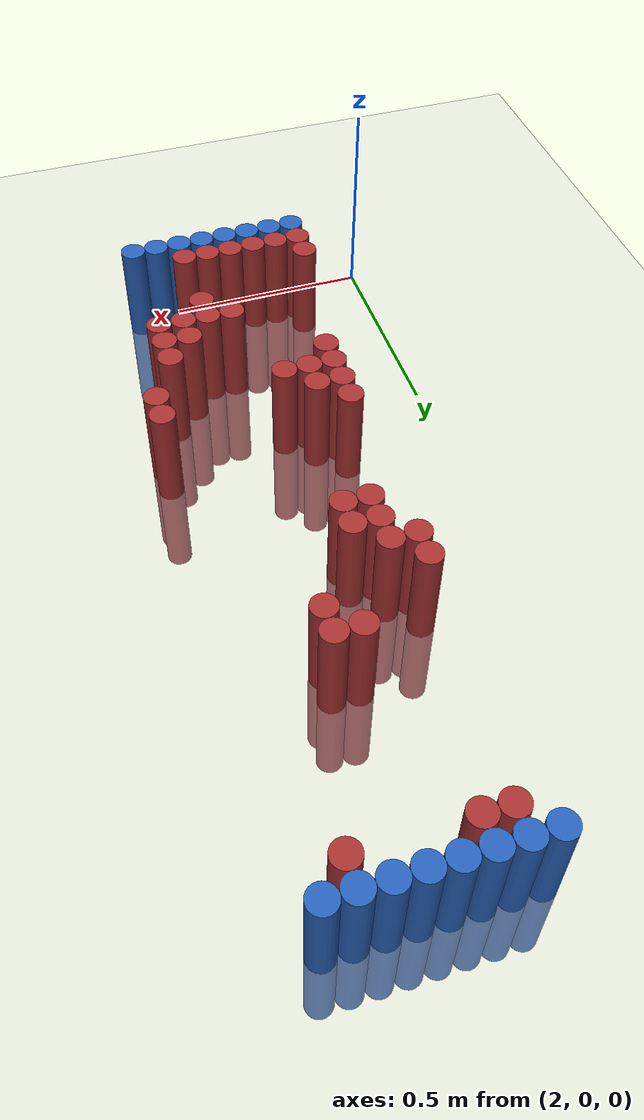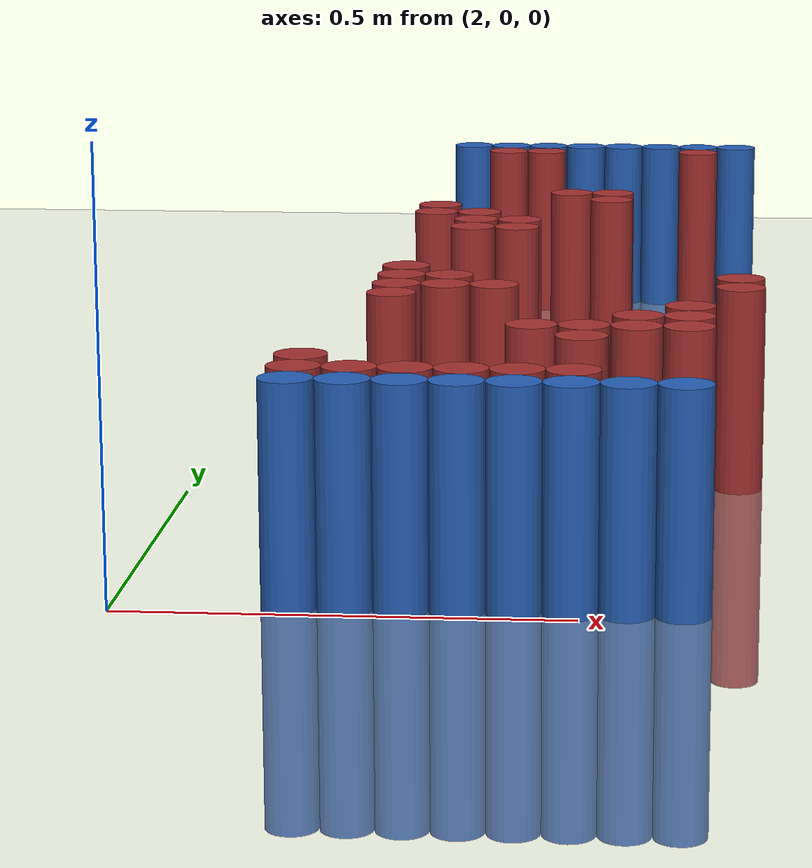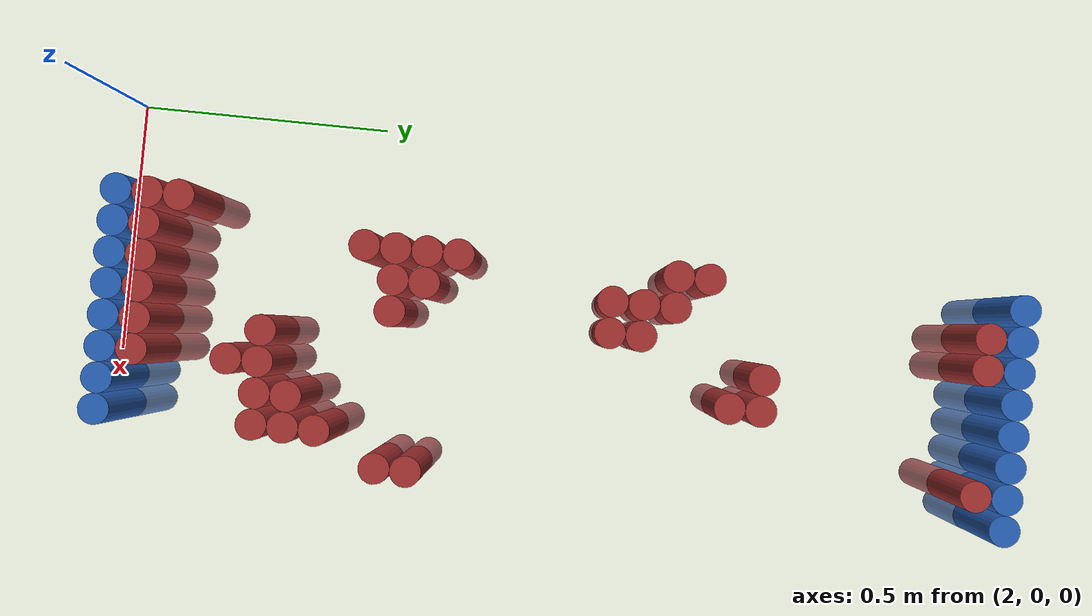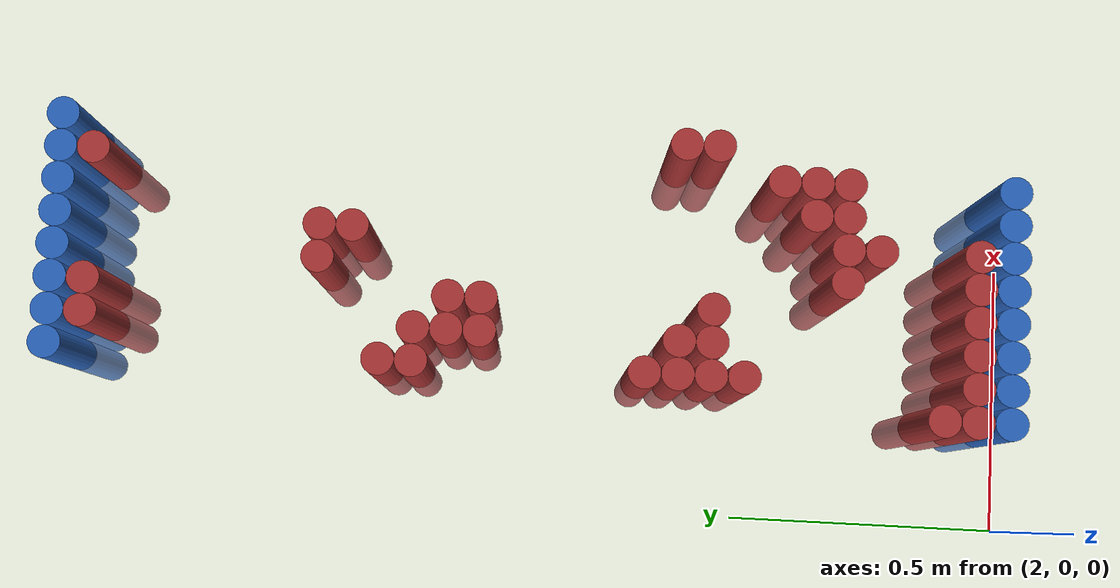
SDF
<sdf version="1.6">
 <world name="default">
  <model name="ground_plane">
   <static>1</static>
   <link name="link">
    <collision name="collision">
     <geometry><plane><normal>0 0 1</normal><size>100 100</size></plane></geometry>
     <surface><friction><ode><mu>100</mu><mu2>50</mu2></ode></friction></surface>
    </collision>
    <visual name="visual">
     <cast_shadows>0</cast_shadows>
     <geometry><plane><normal>0 0 1</normal><size>100 100</size></plane></geometry>
     <material>
      <script><uri>file://media/materials/scripts/gazebo.material</uri><name>Gazebo/Grey</name></script>
     </material>
    </visual>
   </link>
  </model>
  <model name="unit_cylinder_98">
   <static>1</static>
   <pose>2.250000 1.770000 0.000000 0.000000 0.000000 0.000000</pose>
   <link name="link">
    <inertial>
     <mass>1</mass>
     <inertia><ixx>0.145833</ixx><ixy>0</ixy><ixz>0</ixz><iyy>0.145833</iyy><iyz>0</iyz><izz>0.125</izz></inertia>
    </inertial>
    <collision name="collision">
     <geometry><cylinder><radius>0.030000</radius><length>0.5</length></cylinder></geometry>
    </collision>
    <visual name="visual">
     <geometry><cylinder><radius>0.030000</radius><length>0.5</length></cylinder></geometry>
     <material>
      <ambient>0.152000 0.379000 0.720000 1</ambient>
      <diffuse>0.152000 0.379000 0.720000 1</diffuse>
     </material>
     <material>
      <script><name>Gazebo/Grey</name><uri>file://media/materials/scripts/gazebo.material</uri></script>
     </material>
    </visual>
   </link>
  </model>
  <model name="unit_cylinder_99">
   <static>1</static>
   <pose>2.310000 1.770000 0.000000 0.000000 0.000000 0.000000</pose>
   <link name="link">
    <inertial>
     <mass>1</mass>
     <inertia><ixx>0.145833</ixx><ixy>0</ixy><ixz>0</ixz><iyy>0.145833</iyy><iyz>0</iyz><izz>0.125</izz></inertia>
    </inertial>
    <collision name="collision">
     <geometry><cylinder><radius>0.030000</radius><length>0.5</length></cylinder></geometry>
    </collision>
    <visual name="visual">
     <geometry><cylinder><radius>0.030000</radius><length>0.5</length></cylinder></geometry>
     <material>
      <ambient>0.152000 0.379000 0.720000 1</ambient>
      <diffuse>0.152000 0.379000 0.720000 1</diffuse>
     </material>
     <material>
      <script><name>Gazebo/Grey</name><uri>file://media/materials/scripts/gazebo.material</uri></script>
     </material>
    </visual>
   </link>
  </model>
  <model name="unit_cylinder_100">
   <static>1</static>
   <pose>2.370000 1.770000 0.000000 0.000000 0.000000 0.000000</pose>
   <link name="link">
    <inertial>
     <mass>1</mass>
     <inertia><ixx>0.145833</ixx><ixy>0</ixy><ixz>0</ixz><iyy>0.145833</iyy><iyz>0</iyz><izz>0.125</izz></inertia>
    </inertial>
    <collision name="collision">
     <geometry><cylinder><radius>0.030000</radius><length>0.5</length></cylinder></geometry>
    </collision>
    <visual name="visual">
     <geometry><cylinder><radius>0.030000</radius><length>0.5</length></cylinder></geometry>
     <material>
      <ambient>0.152000 0.379000 0.720000 1</ambient>
      <diffuse>0.152000 0.379000 0.720000 1</diffuse>
     </material>
     <material>
      <script><name>Gazebo/Grey</name><uri>file://media/materials/scripts/gazebo.material</uri></script>
     </material>
    </visual>
   </link>
  </model>
  <model name="unit_cylinder_101">
   <static>1</static>
   <pose>2.430000 1.770000 0.000000 0.000000 0.000000 0.000000</pose>
   <link name="link">
    <inertial>
     <mass>1</mass>
     <inertia><ixx>0.145833</ixx><ixy>0</ixy><ixz>0</ixz><iyy>0.145833</iyy><iyz>0</iyz><izz>0.125</izz></inertia>
    </inertial>
    <collision name="collision">
     <geometry><cylinder><radius>0.030000</radius><length>0.5</length></cylinder></geometry>
    </collision>
    <visual name="visual">
     <geometry><cylinder><radius>0.030000</radius><length>0.5</length></cylinder></geometry>
     <material>
      <ambient>0.152000 0.379000 0.720000 1</ambient>
      <diffuse>0.152000 0.379000 0.720000 1</diffuse>
     </material>
     <material>
      <script><name>Gazebo/Grey</name><uri>file://media/materials/scripts/gazebo.material</uri></script>
     </material>
    </visual>
   </link>
  </model>
  <model name="unit_cylinder_102">
   <static>1</static>
   <pose>2.490000 1.770000 0.000000 0.000000 0.000000 0.000000</pose>
   <link name="link">
    <inertial>
     <mass>1</mass>
     <inertia><ixx>0.145833</ixx><ixy>0</ixy><ixz>0</ixz><iyy>0.145833</iyy><iyz>0</iyz><izz>0.125</izz></inertia>
    </inertial>
    <collision name="collision">
     <geometry><cylinder><radius>0.030000</radius><length>0.5</length></cylinder></geometry>
    </collision>
    <visual name="visual">
     <geometry><cylinder><radius>0.030000</radius><length>0.5</length></cylinder></geometry>
     <material>
      <ambient>0.152000 0.379000 0.720000 1</ambient>
      <diffuse>0.152000 0.379000 0.720000 1</diffuse>
     </material>
     <material>
      <script><name>Gazebo/Grey</name><uri>file://media/materials/scripts/gazebo.material</uri></script>
     </material>
    </visual>
   </link>
  </model>
  <model name="unit_cylinder_103">
   <static>1</static>
   <pose>2.550000 1.770000 0.000000 0.000000 0.000000 0.000000</pose>
   <link name="link">
    <inertial>
     <mass>1</mass>
     <inertia><ixx>0.145833</ixx><ixy>0</ixy><ixz>0</ixz><iyy>0.145833</iyy><iyz>0</iyz><izz>0.125</izz></inertia>
    </inertial>
    <collision name="collision">
     <geometry><cylinder><radius>0.030000</radius><length>0.5</length></cylinder></geometry>
    </collision>
    <visual name="visual">
     <geometry><cylinder><radius>0.030000</radius><length>0.5</length></cylinder></geometry>
     <material>
      <ambient>0.152000 0.379000 0.720000 1</ambient>
      <diffuse>0.152000 0.379000 0.720000 1</diffuse>
     </material>
     <material>
      <script><name>Gazebo/Grey</name><uri>file://media/materials/scripts/gazebo.material</uri></script>
     </material>
    </visual>
   </link>
  </model>
  <model name="unit_cylinder_104">
   <static>1</static>
   <pose>2.610000 1.770000 0.000000 0.000000 0.000000 0.000000</pose>
   <link name="link">
    <inertial>
     <mass>1</mass>
     <inertia><ixx>0.145833</ixx><ixy>0</ixy><ixz>0</ixz><iyy>0.145833</iyy><iyz>0</iyz><izz>0.125</izz></inertia>
    </inertial>
    <collision name="collision">
     <geometry><cylinder><radius>0.030000</radius><length>0.5</length></cylinder></geometry>
    </collision>
    <visual name="visual">
     <geometry><cylinder><radius>0.030000</radius><length>0.5</length></cylinder></geometry>
     <material>
      <ambient>0.152000 0.379000 0.720000 1</ambient>
      <diffuse>0.152000 0.379000 0.720000 1</diffuse>
     </material>
     <material>
      <script><name>Gazebo/Grey</name><uri>file://media/materials/scripts/gazebo.material</uri></script>
     </material>
    </visual>
   </link>
  </model>
  <model name="unit_cylinder_105">
   <static>1</static>
   <pose>2.670000 1.770000 0.000000 0.000000 0.000000 0.000000</pose>
   <link name="link">
    <inertial>
     <mass>1</mass>
     <inertia><ixx>0.145833</ixx><ixy>0</ixy><ixz>0</ixz><iyy>0.145833</iyy><iyz>0</iyz><izz>0.125</izz></inertia>
    </inertial>
    <collision name="collision">
     <geometry><cylinder><radius>0.030000</radius><length>0.5</length></cylinder></geometry>
    </collision>
    <visual name="visual">
     <geometry><cylinder><radius>0.030000</radius><length>0.5</length></cylinder></geometry>
     <material>
      <ambient>0.152000 0.379000 0.720000 1</ambient>
      <diffuse>0.152000 0.379000 0.720000 1</diffuse>
     </material>
     <material>
      <script><name>Gazebo/Grey</name><uri>file://media/materials/scripts/gazebo.material</uri></script>
     </material>
    </visual>
   </link>
  </model>
  <model name="unit_cylinder_125">
   <static>1</static>
   <pose>2.310000 1.710000 0.000000 0.000000 0.000000 0.000000</pose>
   <link name="link">
    <inertial>
     <mass>1</mass>
     <inertia><ixx>0.145833</ixx><ixy>0</ixy><ixz>0</ixz><iyy>0.145833</iyy><iyz>0</iyz><izz>0.125</izz></inertia>
    </inertial>
    <collision name="collision">
     <geometry><cylinder><radius>0.030000</radius><length>0.5</length></cylinder></geometry>
    </collision>
    <visual name="visual">
     <geometry><cylinder><radius>0.030000</radius><length>0.5</length></cylinder></geometry>
     <material>
      <ambient>0.648000 0.192000 0.192000 1</ambient>
      <diffuse>0.648000 0.192000 0.192000 1</diffuse>
     </material>
     <material>
      <script><name>Gazebo/Grey</name><uri>file://media/materials/scripts/gazebo.material</uri></script>
     </material>
    </visual>
   </link>
  </model>
  <model name="unit_cylinder_126">
   <static>1</static>
   <pose>2.370000 1.710000 0.000000 0.000000 0.000000 0.000000</pose>
   <link name="link">
    <inertial>
     <mass>1</mass>
     <inertia><ixx>0.145833</ixx><ixy>0</ixy><ixz>0</ixz><iyy>0.145833</iyy><iyz>0</iyz><izz>0.125</izz></inertia>
    </inertial>
    <collision name="collision">
     <geometry><cylinder><radius>0.030000</radius><length>0.5</length></cylinder></geometry>
    </collision>
    <visual name="visual">
     <geometry><cylinder><radius>0.030000</radius><length>0.5</length></cylinder></geometry>
     <material>
      <ambient>0.648000 0.192000 0.192000 1</ambient>
      <diffuse>0.648000 0.192000 0.192000 1</diffuse>
     </material>
     <material>
      <script><name>Gazebo/Grey</name><uri>file://media/materials/scripts/gazebo.material</uri></script>
     </material>
    </visual>
   </link>
  </model>
  <model name="unit_cylinder_127">
   <static>1</static>
   <pose>2.610000 1.710000 0.000000 0.000000 0.000000 0.000000</pose>
   <link name="link">
    <inertial>
     <mass>1</mass>
     <inertia><ixx>0.145833</ixx><ixy>0</ixy><ixz>0</ixz><iyy>0.145833</iyy><iyz>0</iyz><izz>0.125</izz></inertia>
    </inertial>
    <collision name="collision">
     <geometry><cylinder><radius>0.030000</radius><length>0.5</length></cylinder></geometry>
    </collision>
    <visual name="visual">
     <geometry><cylinder><radius>0.030000</radius><length>0.5</length></cylinder></geometry>
     <material>
      <ambient>0.648000 0.192000 0.192000 1</ambient>
      <diffuse>0.648000 0.192000 0.192000 1</diffuse>
     </material>
     <material>
      <script><name>Gazebo/Grey</name><uri>file://media/materials/scripts/gazebo.material</uri></script>
     </material>
    </visual>
   </link>
  </model>
  <model name="unit_cylinder_144">
   <static>1</static>
   <pose>2.430000 1.290000 0.000000 0.000000 0.000000 0.000000</pose>
   <link name="link">
    <inertial>
     <mass>1</mass>
     <inertia><ixx>0.145833</ixx><ixy>0</ixy><ixz>0</ixz><iyy>0.145833</iyy><iyz>0</iyz><izz>0.125</izz></inertia>
    </inertial>
    <collision name="collision">
     <geometry><cylinder><radius>0.030000</radius><length>0.5</length></cylinder></geometry>
    </collision>
    <visual name="visual">
     <geometry><cylinder><radius>0.030000</radius><length>0.5</length></cylinder></geometry>
     <material>
      <ambient>0.648000 0.192000 0.192000 1</ambient>
      <diffuse>0.648000 0.192000 0.192000 1</diffuse>
     </material>
     <material>
      <script><name>Gazebo/Grey</name><uri>file://media/materials/scripts/gazebo.material</uri></script>
     </material>
    </visual>
   </link>
  </model>
  <model name="unit_cylinder_145">
   <static>1</static>
   <pose>2.490000 1.290000 0.000000 0.000000 0.000000 0.000000</pose>
   <link name="link">
    <inertial>
     <mass>1</mass>
     <inertia><ixx>0.145833</ixx><ixy>0</ixy><ixz>0</ixz><iyy>0.145833</iyy><iyz>0</iyz><izz>0.125</izz></inertia>
    </inertial>
    <collision name="collision">
     <geometry><cylinder><radius>0.030000</radius><length>0.5</length></cylinder></geometry>
    </collision>
    <visual name="visual">
     <geometry><cylinder><radius>0.030000</radius><length>0.5</length></cylinder></geometry>
     <material>
      <ambient>0.648000 0.192000 0.192000 1</ambient>
      <diffuse>0.648000 0.192000 0.192000 1</diffuse>
     </material>
     <material>
      <script><name>Gazebo/Grey</name><uri>file://media/materials/scripts/gazebo.material</uri></script>
     </material>
    </visual>
   </link>
  </model>
  <model name="unit_cylinder_149">
   <static>1</static>
   <pose>2.490000 1.230000 0.000000 0.000000 0.000000 0.000000</pose>
   <link name="link">
    <inertial>
     <mass>1</mass>
     <inertia><ixx>0.145833</ixx><ixy>0</ixy><ixz>0</ixz><iyy>0.145833</iyy><iyz>0</iyz><izz>0.125</izz></inertia>
    </inertial>
    <collision name="collision">
     <geometry><cylinder><radius>0.030000</radius><length>0.5</length></cylinder></geometry>
    </collision>
    <visual name="visual">
     <geometry><cylinder><radius>0.030000</radius><length>0.5</length></cylinder></geometry>
     <material>
      <ambient>0.648000 0.192000 0.192000 1</ambient>
      <diffuse>0.648000 0.192000 0.192000 1</diffuse>
     </material>
     <material>
      <script><name>Gazebo/Grey</name><uri>file://media/materials/scripts/gazebo.material</uri></script>
     </material>
    </visual>
   </link>
  </model>
  <model name="unit_cylinder_153">
   <static>1</static>
   <pose>2.250000 1.170000 0.000000 0.000000 0.000000 0.000000</pose>
   <link name="link">
    <inertial>
     <mass>1</mass>
     <inertia><ixx>0.145833</ixx><ixy>0</ixy><ixz>0</ixz><iyy>0.145833</iyy><iyz>0</iyz><izz>0.125</izz></inertia>
    </inertial>
    <collision name="collision">
     <geometry><cylinder><radius>0.030000</radius><length>0.5</length></cylinder></geometry>
    </collision>
    <visual name="visual">
     <geometry><cylinder><radius>0.030000</radius><length>0.5</length></cylinder></geometry>
     <material>
      <ambient>0.648000 0.192000 0.192000 1</ambient>
      <diffuse>0.648000 0.192000 0.192000 1</diffuse>
     </material>
     <material>
      <script><name>Gazebo/Grey</name><uri>file://media/materials/scripts/gazebo.material</uri></script>
     </material>
    </visual>
   </link>
  </model>
  <model name="unit_cylinder_158">
   <static>1</static>
   <pose>2.250000 1.110000 0.000000 0.000000 0.000000 0.000000</pose>
   <link name="link">
    <inertial>
     <mass>1</mass>
     <inertia><ixx>0.145833</ixx><ixy>0</ixy><ixz>0</ixz><iyy>0.145833</iyy><iyz>0</iyz><izz>0.125</izz></inertia>
    </inertial>
    <collision name="collision">
     <geometry><cylinder><radius>0.030000</radius><length>0.5</length></cylinder></geometry>
    </collision>
    <visual name="visual">
     <geometry><cylinder><radius>0.030000</radius><length>0.5</length></cylinder></geometry>
     <material>
      <ambient>0.648000 0.192000 0.192000 1</ambient>
      <diffuse>0.648000 0.192000 0.192000 1</diffuse>
     </material>
     <material>
      <script><name>Gazebo/Grey</name><uri>file://media/materials/scripts/gazebo.material</uri></script>
     </material>
    </visual>
   </link>
  </model>
  <model name="unit_cylinder_159">
   <static>1</static>
   <pose>2.310000 1.110000 0.000000 0.000000 0.000000 0.000000</pose>
   <link name="link">
    <inertial>
     <mass>1</mass>
     <inertia><ixx>0.145833</ixx><ixy>0</ixy><ixz>0</ixz><iyy>0.145833</iyy><iyz>0</iyz><izz>0.125</izz></inertia>
    </inertial>
    <collision name="collision">
     <geometry><cylinder><radius>0.030000</radius><length>0.5</length></cylinder></geometry>
    </collision>
    <visual name="visual">
     <geometry><cylinder><radius>0.030000</radius><length>0.5</length></cylinder></geometry>
     <material>
      <ambient>0.648000 0.192000 0.192000 1</ambient>
      <diffuse>0.648000 0.192000 0.192000 1</diffuse>
     </material>
     <material>
      <script><name>Gazebo/Grey</name><uri>file://media/materials/scripts/gazebo.material</uri></script>
     </material>
    </visual>
   </link>
  </model>
  <model name="unit_cylinder_165">
   <static>1</static>
   <pose>2.310000 1.050000 0.000000 0.000000 0.000000 0.000000</pose>
   <link name="link">
    <inertial>
     <mass>1</mass>
     <inertia><ixx>0.145833</ixx><ixy>0</ixy><ixz>0</ixz><iyy>0.145833</iyy><iyz>0</iyz><izz>0.125</izz></inertia>
    </inertial>
    <collision name="collision">
     <geometry><cylinder><radius>0.030000</radius><length>0.5</length></cylinder></geometry>
    </collision>
    <visual name="visual">
     <geometry><cylinder><radius>0.030000</radius><length>0.5</length></cylinder></geometry>
     <material>
      <ambient>0.648000 0.192000 0.192000 1</ambient>
      <diffuse>0.648000 0.192000 0.192000 1</diffuse>
     </material>
     <material>
      <script><name>Gazebo/Grey</name><uri>file://media/materials/scripts/gazebo.material</uri></script>
     </material>
    </visual>
   </link>
  </model>
  <model name="unit_cylinder_166">
   <static>1</static>
   <pose>2.370000 1.050000 0.000000 0.000000 0.000000 0.000000</pose>
   <link name="link">
    <inertial>
     <mass>1</mass>
     <inertia><ixx>0.145833</ixx><ixy>0</ixy><ixz>0</ixz><iyy>0.145833</iyy><iyz>0</iyz><izz>0.125</izz></inertia>
    </inertial>
    <collision name="collision">
     <geometry><cylinder><radius>0.030000</radius><length>0.5</length></cylinder></geometry>
    </collision>
    <visual name="visual">
     <geometry><cylinder><radius>0.030000</radius><length>0.5</length></cylinder></geometry>
     <material>
      <ambient>0.648000 0.192000 0.192000 1</ambient>
      <diffuse>0.648000 0.192000 0.192000 1</diffuse>
     </material>
     <material>
      <script><name>Gazebo/Grey</name><uri>file://media/materials/scripts/gazebo.material</uri></script>
     </material>
    </visual>
   </link>
  </model>
  <model name="unit_cylinder_170">
   <static>1</static>
   <pose>2.310000 0.990000 0.000000 0.000000 0.000000 0.000000</pose>
   <link name="link">
    <inertial>
     <mass>1</mass>
     <inertia><ixx>0.145833</ixx><ixy>0</ixy><ixz>0</ixz><iyy>0.145833</iyy><iyz>0</iyz><izz>0.125</izz></inertia>
    </inertial>
    <collision name="collision">
     <geometry><cylinder><radius>0.030000</radius><length>0.5</length></cylinder></geometry>
    </collision>
    <visual name="visual">
     <geometry><cylinder><radius>0.030000</radius><length>0.5</length></cylinder></geometry>
     <material>
      <ambient>0.648000 0.192000 0.192000 1</ambient>
      <diffuse>0.648000 0.192000 0.192000 1</diffuse>
     </material>
     <material>
      <script><name>Gazebo/Grey</name><uri>file://media/materials/scripts/gazebo.material</uri></script>
     </material>
    </visual>
   </link>
  </model>
  <model name="unit_cylinder_171">
   <static>1</static>
   <pose>2.370000 0.990000 0.000000 0.000000 0.000000 0.000000</pose>
   <link name="link">
    <inertial>
     <mass>1</mass>
     <inertia><ixx>0.145833</ixx><ixy>0</ixy><ixz>0</ixz><iyy>0.145833</iyy><iyz>0</iyz><izz>0.125</izz></inertia>
    </inertial>
    <collision name="collision">
     <geometry><cylinder><radius>0.030000</radius><length>0.5</length></cylinder></geometry>
    </collision>
    <visual name="visual">
     <geometry><cylinder><radius>0.030000</radius><length>0.5</length></cylinder></geometry>
     <material>
      <ambient>0.648000 0.192000 0.192000 1</ambient>
      <diffuse>0.648000 0.192000 0.192000 1</diffuse>
     </material>
     <material>
      <script><name>Gazebo/Grey</name><uri>file://media/materials/scripts/gazebo.material</uri></script>
     </material>
    </visual>
   </link>
  </model>
  <model name="unit_cylinder_189">
   <static>1</static>
   <pose>2.250000 0.690000 0.000000 0.000000 0.000000 0.000000</pose>
   <link name="link">
    <inertial>
     <mass>1</mass>
     <inertia><ixx>0.145833</ixx><ixy>0</ixy><ixz>0</ixz><iyy>0.145833</iyy><iyz>0</iyz><izz>0.125</izz></inertia>
    </inertial>
    <collision name="collision">
     <geometry><cylinder><radius>0.030000</radius><length>0.5</length></cylinder></geometry>
    </collision>
    <visual name="visual">
     <geometry><cylinder><radius>0.030000</radius><length>0.5</length></cylinder></geometry>
     <material>
      <ambient>0.648000 0.192000 0.192000 1</ambient>
      <diffuse>0.648000 0.192000 0.192000 1</diffuse>
     </material>
     <material>
      <script><name>Gazebo/Grey</name><uri>file://media/materials/scripts/gazebo.material</uri></script>
     </material>
    </visual>
   </link>
  </model>
  <model name="unit_cylinder_196">
   <static>1</static>
   <pose>2.250000 0.630000 0.000000 0.000000 0.000000 0.000000</pose>
   <link name="link">
    <inertial>
     <mass>1</mass>
     <inertia><ixx>0.145833</ixx><ixy>0</ixy><ixz>0</ixz><iyy>0.145833</iyy><iyz>0</iyz><izz>0.125</izz></inertia>
    </inertial>
    <collision name="collision">
     <geometry><cylinder><radius>0.030000</radius><length>0.5</length></cylinder></geometry>
    </collision>
    <visual name="visual">
     <geometry><cylinder><radius>0.030000</radius><length>0.5</length></cylinder></geometry>
     <material>
      <ambient>0.648000 0.192000 0.192000 1</ambient>
      <diffuse>0.648000 0.192000 0.192000 1</diffuse>
     </material>
     <material>
      <script><name>Gazebo/Grey</name><uri>file://media/materials/scripts/gazebo.material</uri></script>
     </material>
    </visual>
   </link>
  </model>
  <model name="unit_cylinder_197">
   <static>1</static>
   <pose>2.310000 0.630000 0.000000 0.000000 0.000000 0.000000</pose>
   <link name="link">
    <inertial>
     <mass>1</mass>
     <inertia><ixx>0.145833</ixx><ixy>0</ixy><ixz>0</ixz><iyy>0.145833</iyy><iyz>0</iyz><izz>0.125</izz></inertia>
    </inertial>
    <collision name="collision">
     <geometry><cylinder><radius>0.030000</radius><length>0.5</length></cylinder></geometry>
    </collision>
    <visual name="visual">
     <geometry><cylinder><radius>0.030000</radius><length>0.5</length></cylinder></geometry>
     <material>
      <ambient>0.648000 0.192000 0.192000 1</ambient>
      <diffuse>0.648000 0.192000 0.192000 1</diffuse>
     </material>
     <material>
      <script><name>Gazebo/Grey</name><uri>file://media/materials/scripts/gazebo.material</uri></script>
     </material>
    </visual>
   </link>
  </model>
  <model name="unit_cylinder_198">
   <static>1</static>
   <pose>2.670000 0.630000 0.000000 0.000000 0.000000 0.000000</pose>
   <link name="link">
    <inertial>
     <mass>1</mass>
     <inertia><ixx>0.145833</ixx><ixy>0</ixy><ixz>0</ixz><iyy>0.145833</iyy><iyz>0</iyz><izz>0.125</izz></inertia>
    </inertial>
    <collision name="collision">
     <geometry><cylinder><radius>0.030000</radius><length>0.5</length></cylinder></geometry>
    </collision>
    <visual name="visual">
     <geometry><cylinder><radius>0.030000</radius><length>0.5</length></cylinder></geometry>
     <material>
      <ambient>0.648000 0.192000 0.192000 1</ambient>
      <diffuse>0.648000 0.192000 0.192000 1</diffuse>
     </material>
     <material>
      <script><name>Gazebo/Grey</name><uri>file://media/materials/scripts/gazebo.material</uri></script>
     </material>
    </visual>
   </link>
  </model>
  <model name="unit_cylinder_203">
   <static>1</static>
   <pose>2.250000 0.570000 0.000000 0.000000 0.000000 0.000000</pose>
   <link name="link">
    <inertial>
     <mass>1</mass>
     <inertia><ixx>0.145833</ixx><ixy>0</ixy><ixz>0</ixz><iyy>0.145833</iyy><iyz>0</iyz><izz>0.125</izz></inertia>
    </inertial>
    <collision name="collision">
     <geometry><cylinder><radius>0.030000</radius><length>0.5</length></cylinder></geometry>
    </collision>
    <visual name="visual">
     <geometry><cylinder><radius>0.030000</radius><length>0.5</length></cylinder></geometry>
     <material>
      <ambient>0.648000 0.192000 0.192000 1</ambient>
      <diffuse>0.648000 0.192000 0.192000 1</diffuse>
     </material>
     <material>
      <script><name>Gazebo/Grey</name><uri>file://media/materials/scripts/gazebo.material</uri></script>
     </material>
    </visual>
   </link>
  </model>
  <model name="unit_cylinder_204">
   <static>1</static>
   <pose>2.310000 0.570000 0.000000 0.000000 0.000000 0.000000</pose>
   <link name="link">
    <inertial>
     <mass>1</mass>
     <inertia><ixx>0.145833</ixx><ixy>0</ixy><ixz>0</ixz><iyy>0.145833</iyy><iyz>0</iyz><izz>0.125</izz></inertia>
    </inertial>
    <collision name="collision">
     <geometry><cylinder><radius>0.030000</radius><length>0.5</length></cylinder></geometry>
    </collision>
    <visual name="visual">
     <geometry><cylinder><radius>0.030000</radius><length>0.5</length></cylinder></geometry>
     <material>
      <ambient>0.648000 0.192000 0.192000 1</ambient>
      <diffuse>0.648000 0.192000 0.192000 1</diffuse>
     </material>
     <material>
      <script><name>Gazebo/Grey</name><uri>file://media/materials/scripts/gazebo.material</uri></script>
     </material>
    </visual>
   </link>
  </model>
  <model name="unit_cylinder_205">
   <static>1</static>
   <pose>2.370000 0.570000 0.000000 0.000000 0.000000 0.000000</pose>
   <link name="link">
    <inertial>
     <mass>1</mass>
     <inertia><ixx>0.145833</ixx><ixy>0</ixy><ixz>0</ixz><iyy>0.145833</iyy><iyz>0</iyz><izz>0.125</izz></inertia>
    </inertial>
    <collision name="collision">
     <geometry><cylinder><radius>0.030000</radius><length>0.5</length></cylinder></geometry>
    </collision>
    <visual name="visual">
     <geometry><cylinder><radius>0.030000</radius><length>0.5</length></cylinder></geometry>
     <material>
      <ambient>0.648000 0.192000 0.192000 1</ambient>
      <diffuse>0.648000 0.192000 0.192000 1</diffuse>
     </material>
     <material>
      <script><name>Gazebo/Grey</name><uri>file://media/materials/scripts/gazebo.material</uri></script>
     </material>
    </visual>
   </link>
  </model>
  <model name="unit_cylinder_206">
   <static>1</static>
   <pose>2.670000 0.570000 0.000000 0.000000 0.000000 0.000000</pose>
   <link name="link">
    <inertial>
     <mass>1</mass>
     <inertia><ixx>0.145833</ixx><ixy>0</ixy><ixz>0</ixz><iyy>0.145833</iyy><iyz>0</iyz><izz>0.125</izz></inertia>
    </inertial>
    <collision name="collision">
     <geometry><cylinder><radius>0.030000</radius><length>0.5</length></cylinder></geometry>
    </collision>
    <visual name="visual">
     <geometry><cylinder><radius>0.030000</radius><length>0.5</length></cylinder></geometry>
     <material>
      <ambient>0.648000 0.192000 0.192000 1</ambient>
      <diffuse>0.648000 0.192000 0.192000 1</diffuse>
     </material>
     <material>
      <script><name>Gazebo/Grey</name><uri>file://media/materials/scripts/gazebo.material</uri></script>
     </material>
    </visual>
   </link>
  </model>
  <model name="unit_cylinder_209">
   <static>1</static>
   <pose>2.250000 0.510000 0.000000 0.000000 0.000000 0.000000</pose>
   <link name="link">
    <inertial>
     <mass>1</mass>
     <inertia><ixx>0.145833</ixx><ixy>0</ixy><ixz>0</ixz><iyy>0.145833</iyy><iyz>0</iyz><izz>0.125</izz></inertia>
    </inertial>
    <collision name="collision">
     <geometry><cylinder><radius>0.030000</radius><length>0.5</length></cylinder></geometry>
    </collision>
    <visual name="visual">
     <geometry><cylinder><radius>0.030000</radius><length>0.5</length></cylinder></geometry>
     <material>
      <ambient>0.648000 0.192000 0.192000 1</ambient>
      <diffuse>0.648000 0.192000 0.192000 1</diffuse>
     </material>
     <material>
      <script><name>Gazebo/Grey</name><uri>file://media/materials/scripts/gazebo.material</uri></script>
     </material>
    </visual>
   </link>
  </model>
  <model name="unit_cylinder_215">
   <static>1</static>
   <pose>2.610000 0.450000 0.000000 0.000000 0.000000 0.000000</pose>
   <link name="link">
    <inertial>
     <mass>1</mass>
     <inertia><ixx>0.145833</ixx><ixy>0</ixy><ixz>0</ixz><iyy>0.145833</iyy><iyz>0</iyz><izz>0.125</izz></inertia>
    </inertial>
    <collision name="collision">
     <geometry><cylinder><radius>0.030000</radius><length>0.5</length></cylinder></geometry>
    </collision>
    <visual name="visual">
     <geometry><cylinder><radius>0.030000</radius><length>0.5</length></cylinder></geometry>
     <material>
      <ambient>0.648000 0.192000 0.192000 1</ambient>
      <diffuse>0.648000 0.192000 0.192000 1</diffuse>
     </material>
     <material>
      <script><name>Gazebo/Grey</name><uri>file://media/materials/scripts/gazebo.material</uri></script>
     </material>
    </visual>
   </link>
  </model>
  <model name="unit_cylinder_222">
   <static>1</static>
   <pose>2.550000 0.390000 0.000000 0.000000 0.000000 0.000000</pose>
   <link name="link">
    <inertial>
     <mass>1</mass>
     <inertia><ixx>0.145833</ixx><ixy>0</ixy><ixz>0</ixz><iyy>0.145833</iyy><iyz>0</iyz><izz>0.125</izz></inertia>
    </inertial>
    <collision name="collision">
     <geometry><cylinder><radius>0.030000</radius><length>0.5</length></cylinder></geometry>
    </collision>
    <visual name="visual">
     <geometry><cylinder><radius>0.030000</radius><length>0.5</length></cylinder></geometry>
     <material>
      <ambient>0.648000 0.192000 0.192000 1</ambient>
      <diffuse>0.648000 0.192000 0.192000 1</diffuse>
     </material>
     <material>
      <script><name>Gazebo/Grey</name><uri>file://media/materials/scripts/gazebo.material</uri></script>
     </material>
    </visual>
   </link>
  </model>
  <model name="unit_cylinder_223">
   <static>1</static>
   <pose>2.610000 0.390000 0.000000 0.000000 0.000000 0.000000</pose>
   <link name="link">
    <inertial>
     <mass>1</mass>
     <inertia><ixx>0.145833</ixx><ixy>0</ixy><ixz>0</ixz><iyy>0.145833</iyy><iyz>0</iyz><izz>0.125</izz></inertia>
    </inertial>
    <collision name="collision">
     <geometry><cylinder><radius>0.030000</radius><length>0.5</length></cylinder></geometry>
    </collision>
    <visual name="visual">
     <geometry><cylinder><radius>0.030000</radius><length>0.5</length></cylinder></geometry>
     <material>
      <ambient>0.648000 0.192000 0.192000 1</ambient>
      <diffuse>0.648000 0.192000 0.192000 1</diffuse>
     </material>
     <material>
      <script><name>Gazebo/Grey</name><uri>file://media/materials/scripts/gazebo.material</uri></script>
     </material>
    </visual>
   </link>
  </model>
  <model name="unit_cylinder_232">
   <static>1</static>
   <pose>2.430000 0.330000 0.000000 0.000000 0.000000 0.000000</pose>
   <link name="link">
    <inertial>
     <mass>1</mass>
     <inertia><ixx>0.145833</ixx><ixy>0</ixy><ixz>0</ixz><iyy>0.145833</iyy><iyz>0</iyz><izz>0.125</izz></inertia>
    </inertial>
    <collision name="collision">
     <geometry><cylinder><radius>0.030000</radius><length>0.5</length></cylinder></geometry>
    </collision>
    <visual name="visual">
     <geometry><cylinder><radius>0.030000</radius><length>0.5</length></cylinder></geometry>
     <material>
      <ambient>0.648000 0.192000 0.192000 1</ambient>
      <diffuse>0.648000 0.192000 0.192000 1</diffuse>
     </material>
     <material>
      <script><name>Gazebo/Grey</name><uri>file://media/materials/scripts/gazebo.material</uri></script>
     </material>
    </visual>
   </link>
  </model>
  <model name="unit_cylinder_233">
   <static>1</static>
   <pose>2.490000 0.330000 0.000000 0.000000 0.000000 0.000000</pose>
   <link name="link">
    <inertial>
     <mass>1</mass>
     <inertia><ixx>0.145833</ixx><ixy>0</ixy><ixz>0</ixz><iyy>0.145833</iyy><iyz>0</iyz><izz>0.125</izz></inertia>
    </inertial>
    <collision name="collision">
     <geometry><cylinder><radius>0.030000</radius><length>0.5</length></cylinder></geometry>
    </collision>
    <visual name="visual">
     <geometry><cylinder><radius>0.030000</radius><length>0.5</length></cylinder></geometry>
     <material>
      <ambient>0.648000 0.192000 0.192000 1</ambient>
      <diffuse>0.648000 0.192000 0.192000 1</diffuse>
     </material>
     <material>
      <script><name>Gazebo/Grey</name><uri>file://media/materials/scripts/gazebo.material</uri></script>
     </material>
    </visual>
   </link>
  </model>
  <model name="unit_cylinder_234">
   <static>1</static>
   <pose>2.550000 0.330000 0.000000 0.000000 0.000000 0.000000</pose>
   <link name="link">
    <inertial>
     <mass>1</mass>
     <inertia><ixx>0.145833</ixx><ixy>0</ixy><ixz>0</ixz><iyy>0.145833</iyy><iyz>0</iyz><izz>0.125</izz></inertia>
    </inertial>
    <collision name="collision">
     <geometry><cylinder><radius>0.030000</radius><length>0.5</length></cylinder></geometry>
    </collision>
    <visual name="visual">
     <geometry><cylinder><radius>0.030000</radius><length>0.5</length></cylinder></geometry>
     <material>
      <ambient>0.648000 0.192000 0.192000 1</ambient>
      <diffuse>0.648000 0.192000 0.192000 1</diffuse>
     </material>
     <material>
      <script><name>Gazebo/Grey</name><uri>file://media/materials/scripts/gazebo.material</uri></script>
     </material>
    </visual>
   </link>
  </model>
  <model name="unit_cylinder_235">
   <static>1</static>
   <pose>2.610000 0.330000 0.000000 0.000000 0.000000 0.000000</pose>
   <link name="link">
    <inertial>
     <mass>1</mass>
     <inertia><ixx>0.145833</ixx><ixy>0</ixy><ixz>0</ixz><iyy>0.145833</iyy><iyz>0</iyz><izz>0.125</izz></inertia>
    </inertial>
    <collision name="collision">
     <geometry><cylinder><radius>0.030000</radius><length>0.5</length></cylinder></geometry>
    </collision>
    <visual name="visual">
     <geometry><cylinder><radius>0.030000</radius><length>0.5</length></cylinder></geometry>
     <material>
      <ambient>0.648000 0.192000 0.192000 1</ambient>
      <diffuse>0.648000 0.192000 0.192000 1</diffuse>
     </material>
     <material>
      <script><name>Gazebo/Grey</name><uri>file://media/materials/scripts/gazebo.material</uri></script>
     </material>
    </visual>
   </link>
  </model>
  <model name="unit_cylinder_243">
   <static>1</static>
   <pose>2.490000 0.270000 0.000000 0.000000 0.000000 0.000000</pose>
   <link name="link">
    <inertial>
     <mass>1</mass>
     <inertia><ixx>0.145833</ixx><ixy>0</ixy><ixz>0</ixz><iyy>0.145833</iyy><iyz>0</iyz><izz>0.125</izz></inertia>
    </inertial>
    <collision name="collision">
     <geometry><cylinder><radius>0.030000</radius><length>0.5</length></cylinder></geometry>
    </collision>
    <visual name="visual">
     <geometry><cylinder><radius>0.030000</radius><length>0.5</length></cylinder></geometry>
     <material>
      <ambient>0.648000 0.192000 0.192000 1</ambient>
      <diffuse>0.648000 0.192000 0.192000 1</diffuse>
     </material>
     <material>
      <script><name>Gazebo/Grey</name><uri>file://media/materials/scripts/gazebo.material</uri></script>
     </material>
    </visual>
   </link>
  </model>
  <model name="unit_cylinder_255">
   <static>1</static>
   <pose>2.190000 0.150000 0.000000 0.000000 0.000000 0.000000</pose>
   <link name="link">
    <inertial>
     <mass>1</mass>
     <inertia><ixx>0.145833</ixx><ixy>0</ixy><ixz>0</ixz><iyy>0.145833</iyy><iyz>0</iyz><izz>0.125</izz></inertia>
    </inertial>
    <collision name="collision">
     <geometry><cylinder><radius>0.030000</radius><length>0.5</length></cylinder></geometry>
    </collision>
    <visual name="visual">
     <geometry><cylinder><radius>0.030000</radius><length>0.5</length></cylinder></geometry>
     <material>
      <ambient>0.648000 0.192000 0.192000 1</ambient>
      <diffuse>0.648000 0.192000 0.192000 1</diffuse>
     </material>
     <material>
      <script><name>Gazebo/Grey</name><uri>file://media/materials/scripts/gazebo.material</uri></script>
     </material>
    </visual>
   </link>
  </model>
  <model name="unit_cylinder_266">
   <static>1</static>
   <pose>2.190000 0.090000 0.000000 0.000000 0.000000 0.000000</pose>
   <link name="link">
    <inertial>
     <mass>1</mass>
     <inertia><ixx>0.145833</ixx><ixy>0</ixy><ixz>0</ixz><iyy>0.145833</iyy><iyz>0</iyz><izz>0.125</izz></inertia>
    </inertial>
    <collision name="collision">
     <geometry><cylinder><radius>0.030000</radius><length>0.5</length></cylinder></geometry>
    </collision>
    <visual name="visual">
     <geometry><cylinder><radius>0.030000</radius><length>0.5</length></cylinder></geometry>
     <material>
      <ambient>0.648000 0.192000 0.192000 1</ambient>
      <diffuse>0.648000 0.192000 0.192000 1</diffuse>
     </material>
     <material>
      <script><name>Gazebo/Grey</name><uri>file://media/materials/scripts/gazebo.material</uri></script>
     </material>
    </visual>
   </link>
  </model>
  <model name="unit_cylinder_267">
   <static>1</static>
   <pose>2.250000 0.090000 0.000000 0.000000 0.000000 0.000000</pose>
   <link name="link">
    <inertial>
     <mass>1</mass>
     <inertia><ixx>0.145833</ixx><ixy>0</ixy><ixz>0</ixz><iyy>0.145833</iyy><iyz>0</iyz><izz>0.125</izz></inertia>
    </inertial>
    <collision name="collision">
     <geometry><cylinder><radius>0.030000</radius><length>0.5</length></cylinder></geometry>
    </collision>
    <visual name="visual">
     <geometry><cylinder><radius>0.030000</radius><length>0.5</length></cylinder></geometry>
     <material>
      <ambient>0.648000 0.192000 0.192000 1</ambient>
      <diffuse>0.648000 0.192000 0.192000 1</diffuse>
     </material>
     <material>
      <script><name>Gazebo/Grey</name><uri>file://media/materials/scripts/gazebo.material</uri></script>
     </material>
    </visual>
   </link>
  </model>
  <model name="unit_cylinder_268">
   <static>1</static>
   <pose>2.310000 0.090000 0.000000 0.000000 0.000000 0.000000</pose>
   <link name="link">
    <inertial>
     <mass>1</mass>
     <inertia><ixx>0.145833</ixx><ixy>0</ixy><ixz>0</ixz><iyy>0.145833</iyy><iyz>0</iyz><izz>0.125</izz></inertia>
    </inertial>
    <collision name="collision">
     <geometry><cylinder><radius>0.030000</radius><length>0.5</length></cylinder></geometry>
    </collision>
    <visual name="visual">
     <geometry><cylinder><radius>0.030000</radius><length>0.5</length></cylinder></geometry>
     <material>
      <ambient>0.648000 0.192000 0.192000 1</ambient>
      <diffuse>0.648000 0.192000 0.192000 1</diffuse>
     </material>
     <material>
      <script><name>Gazebo/Grey</name><uri>file://media/materials/scripts/gazebo.material</uri></script>
     </material>
    </visual>
   </link>
  </model>
  <model name="unit_cylinder_269">
   <static>1</static>
   <pose>2.370000 0.090000 0.000000 0.000000 0.000000 0.000000</pose>
   <link name="link">
    <inertial>
     <mass>1</mass>
     <inertia><ixx>0.145833</ixx><ixy>0</ixy><ixz>0</ixz><iyy>0.145833</iyy><iyz>0</iyz><izz>0.125</izz></inertia>
    </inertial>
    <collision name="collision">
     <geometry><cylinder><radius>0.030000</radius><length>0.5</length></cylinder></geometry>
    </collision>
    <visual name="visual">
     <geometry><cylinder><radius>0.030000</radius><length>0.5</length></cylinder></geometry>
     <material>
      <ambient>0.648000 0.192000 0.192000 1</ambient>
      <diffuse>0.648000 0.192000 0.192000 1</diffuse>
     </material>
     <material>
      <script><name>Gazebo/Grey</name><uri>file://media/materials/scripts/gazebo.material</uri></script>
     </material>
    </visual>
   </link>
  </model>
  <model name="unit_cylinder_270">
   <static>1</static>
   <pose>2.430000 0.090000 0.000000 0.000000 0.000000 0.000000</pose>
   <link name="link">
    <inertial>
     <mass>1</mass>
     <inertia><ixx>0.145833</ixx><ixy>0</ixy><ixz>0</ixz><iyy>0.145833</iyy><iyz>0</iyz><izz>0.125</izz></inertia>
    </inertial>
    <collision name="collision">
     <geometry><cylinder><radius>0.030000</radius><length>0.5</length></cylinder></geometry>
    </collision>
    <visual name="visual">
     <geometry><cylinder><radius>0.030000</radius><length>0.5</length></cylinder></geometry>
     <material>
      <ambient>0.648000 0.192000 0.192000 1</ambient>
      <diffuse>0.648000 0.192000 0.192000 1</diffuse>
     </material>
     <material>
      <script><name>Gazebo/Grey</name><uri>file://media/materials/scripts/gazebo.material</uri></script>
     </material>
    </visual>
   </link>
  </model>
  <model name="unit_cylinder_271">
   <static>1</static>
   <pose>2.490000 0.090000 0.000000 0.000000 0.000000 0.000000</pose>
   <link name="link">
    <inertial>
     <mass>1</mass>
     <inertia><ixx>0.145833</ixx><ixy>0</ixy><ixz>0</ixz><iyy>0.145833</iyy><iyz>0</iyz><izz>0.125</izz></inertia>
    </inertial>
    <collision name="collision">
     <geometry><cylinder><radius>0.030000</radius><length>0.5</length></cylinder></geometry>
    </collision>
    <visual name="visual">
     <geometry><cylinder><radius>0.030000</radius><length>0.5</length></cylinder></geometry>
     <material>
      <ambient>0.648000 0.192000 0.192000 1</ambient>
      <diffuse>0.648000 0.192000 0.192000 1</diffuse>
     </material>
     <material>
      <script><name>Gazebo/Grey</name><uri>file://media/materials/scripts/gazebo.material</uri></script>
     </material>
    </visual>
   </link>
  </model>
  <model name="unit_cylinder_288">
   <static>1</static>
   <pose>2.190000 0.030000 0.000000 0.000000 0.000000 0.000000</pose>
   <link name="link">
    <inertial>
     <mass>1</mass>
     <inertia><ixx>0.145833</ixx><ixy>0</ixy><ixz>0</ixz><iyy>0.145833</iyy><iyz>0</iyz><izz>0.125</izz></inertia>
    </inertial>
    <collision name="collision">
     <geometry><cylinder><radius>0.030000</radius><length>0.5</length></cylinder></geometry>
    </collision>
    <visual name="visual">
     <geometry><cylinder><radius>0.030000</radius><length>0.5</length></cylinder></geometry>
     <material>
      <ambient>0.152000 0.379000 0.720000 1</ambient>
      <diffuse>0.152000 0.379000 0.720000 1</diffuse>
     </material>
     <material>
      <script><name>Gazebo/Grey</name><uri>file://media/materials/scripts/gazebo.material</uri></script>
     </material>
    </visual>
   </link>
  </model>
  <model name="unit_cylinder_289">
   <static>1</static>
   <pose>2.250000 0.030000 0.000000 0.000000 0.000000 0.000000</pose>
   <link name="link">
    <inertial>
     <mass>1</mass>
     <inertia><ixx>0.145833</ixx><ixy>0</ixy><ixz>0</ixz><iyy>0.145833</iyy><iyz>0</iyz><izz>0.125</izz></inertia>
    </inertial>
    <collision name="collision">
     <geometry><cylinder><radius>0.030000</radius><length>0.5</length></cylinder></geometry>
    </collision>
    <visual name="visual">
     <geometry><cylinder><radius>0.030000</radius><length>0.5</length></cylinder></geometry>
     <material>
      <ambient>0.152000 0.379000 0.720000 1</ambient>
      <diffuse>0.152000 0.379000 0.720000 1</diffuse>
     </material>
     <material>
      <script><name>Gazebo/Grey</name><uri>file://media/materials/scripts/gazebo.material</uri></script>
     </material>
    </visual>
   </link>
  </model>
  <model name="unit_cylinder_290">
   <static>1</static>
   <pose>2.310000 0.030000 0.000000 0.000000 0.000000 0.000000</pose>
   <link name="link">
    <inertial>
     <mass>1</mass>
     <inertia><ixx>0.145833</ixx><ixy>0</ixy><ixz>0</ixz><iyy>0.145833</iyy><iyz>0</iyz><izz>0.125</izz></inertia>
    </inertial>
    <collision name="collision">
     <geometry><cylinder><radius>0.030000</radius><length>0.5</length></cylinder></geometry>
    </collision>
    <visual name="visual">
     <geometry><cylinder><radius>0.030000</radius><length>0.5</length></cylinder></geometry>
     <material>
      <ambient>0.152000 0.379000 0.720000 1</ambient>
      <diffuse>0.152000 0.379000 0.720000 1</diffuse>
     </material>
     <material>
      <script><name>Gazebo/Grey</name><uri>file://media/materials/scripts/gazebo.material</uri></script>
     </material>
    </visual>
   </link>
  </model>
  <model name="unit_cylinder_291">
   <static>1</static>
   <pose>2.370000 0.030000 0.000000 0.000000 0.000000 0.000000</pose>
   <link name="link">
    <inertial>
     <mass>1</mass>
     <inertia><ixx>0.145833</ixx><ixy>0</ixy><ixz>0</ixz><iyy>0.145833</iyy><iyz>0</iyz><izz>0.125</izz></inertia>
    </inertial>
    <collision name="collision">
     <geometry><cylinder><radius>0.030000</radius><length>0.5</length></cylinder></geometry>
    </collision>
    <visual name="visual">
     <geometry><cylinder><radius>0.030000</radius><length>0.5</length></cylinder></geometry>
     <material>
      <ambient>0.152000 0.379000 0.720000 1</ambient>
      <diffuse>0.152000 0.379000 0.720000 1</diffuse>
     </material>
     <material>
      <script><name>Gazebo/Grey</name><uri>file://media/materials/scripts/gazebo.material</uri></script>
     </material>
    </visual>
   </link>
  </model>
  <model name="unit_cylinder_292">
   <static>1</static>
   <pose>2.430000 0.030000 0.000000 0.000000 0.000000 0.000000</pose>
   <link name="link">
    <inertial>
     <mass>1</mass>
     <inertia><ixx>0.145833</ixx><ixy>0</ixy><ixz>0</ixz><iyy>0.145833</iyy><iyz>0</iyz><izz>0.125</izz></inertia>
    </inertial>
    <collision name="collision">
     <geometry><cylinder><radius>0.030000</radius><length>0.5</length></cylinder></geometry>
    </collision>
    <visual name="visual">
     <geometry><cylinder><radius>0.030000</radius><length>0.5</length></cylinder></geometry>
     <material>
      <ambient>0.152000 0.379000 0.720000 1</ambient>
      <diffuse>0.152000 0.379000 0.720000 1</diffuse>
     </material>
     <material>
      <script><name>Gazebo/Grey</name><uri>file://media/materials/scripts/gazebo.material</uri></script>
     </material>
    </visual>
   </link>
  </model>
  <model name="unit_cylinder_293">
   <static>1</static>
   <pose>2.490000 0.030000 0.000000 0.000000 0.000000 0.000000</pose>
   <link name="link">
    <inertial>
     <mass>1</mass>
     <inertia><ixx>0.145833</ixx><ixy>0</ixy><ixz>0</ixz><iyy>0.145833</iyy><iyz>0</iyz><izz>0.125</izz></inertia>
    </inertial>
    <collision name="collision">
     <geometry><cylinder><radius>0.030000</radius><length>0.5</length></cylinder></geometry>
    </collision>
    <visual name="visual">
     <geometry><cylinder><radius>0.030000</radius><length>0.5</length></cylinder></geometry>
     <material>
      <ambient>0.152000 0.379000 0.720000 1</ambient>
      <diffuse>0.152000 0.379000 0.720000 1</diffuse>
     </material>
     <material>
      <script><name>Gazebo/Grey</name><uri>file://media/materials/scripts/gazebo.material</uri></script>
     </material>
    </visual>
   </link>
  </model>
  <model name="unit_cylinder_294">
   <static>1</static>
   <pose>2.550000 0.030000 0.000000 0.000000 0.000000 0.000000</pose>
   <link name="link">
    <inertial>
     <mass>1</mass>
     <inertia><ixx>0.145833</ixx><ixy>0</ixy><ixz>0</ixz><iyy>0.145833</iyy><iyz>0</iyz><izz>0.125</izz></inertia>
    </inertial>
    <collision name="collision">
     <geometry><cylinder><radius>0.030000</radius><length>0.5</length></cylinder></geometry>
    </collision>
    <visual name="visual">
     <geometry><cylinder><radius>0.030000</radius><length>0.5</length></cylinder></geometry>
     <material>
      <ambient>0.152000 0.379000 0.720000 1</ambient>
      <diffuse>0.152000 0.379000 0.720000 1</diffuse>
     </material>
     <material>
      <script><name>Gazebo/Grey</name><uri>file://media/materials/scripts/gazebo.material</uri></script>
     </material>
    </visual>
   </link>
  </model>
  <model name="unit_cylinder_295">
   <static>1</static>
   <pose>2.610000 0.030000 0.000000 0.000000 0.000000 0.000000</pose>
   <link name="link">
    <inertial>
     <mass>1</mass>
     <inertia><ixx>0.145833</ixx><ixy>0</ixy><ixz>0</ixz><iyy>0.145833</iyy><iyz>0</iyz><izz>0.125</izz></inertia>
    </inertial>
    <collision name="collision">
     <geometry><cylinder><radius>0.030000</radius><length>0.5</length></cylinder></geometry>
    </collision>
    <visual name="visual">
     <geometry><cylinder><radius>0.030000</radius><length>0.5</length></cylinder></geometry>
     <material>
      <ambient>0.152000 0.379000 0.720000 1</ambient>
      <diffuse>0.152000 0.379000 0.720000 1</diffuse>
     </material>
     <material>
      <script><name>Gazebo/Grey</name><uri>file://media/materials/scripts/gazebo.material</uri></script>
     </material>
    </visual>
   </link>
  </model>
 </world>
</sdf>
